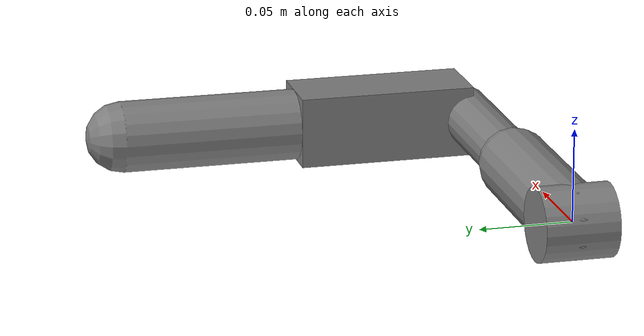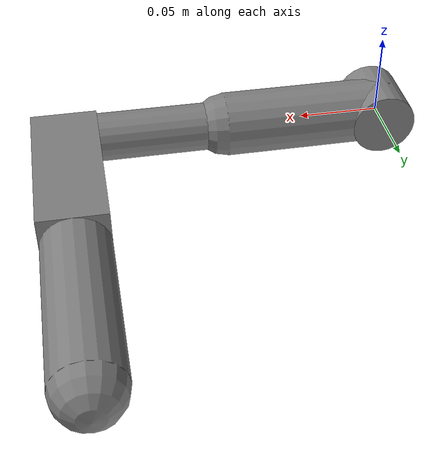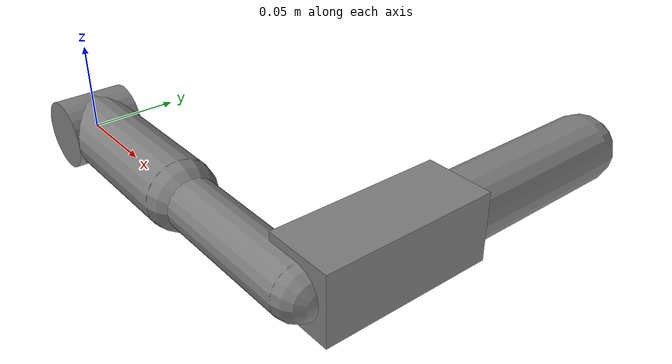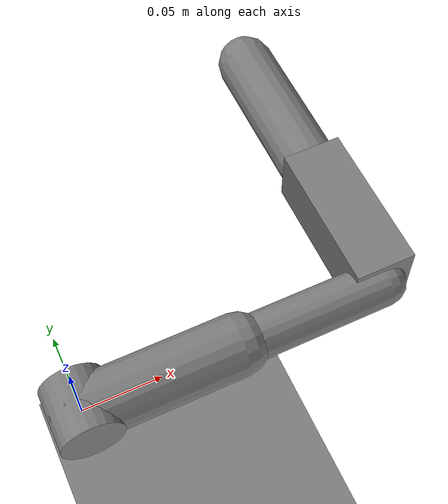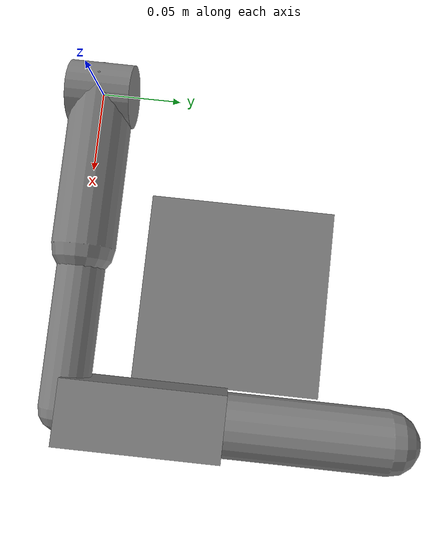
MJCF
<mujoco model="energy conserving pendulum">
    <option integrator="RK4">
        <flag constraint="disable" energy="enable"/>
    </option>
    <worldbody>
        <light pos="0 0 2"/>
        <geom pos="0 0 -.5" type="plane" size="1 1 .01"/>
        <body pos="0 0 0">
            <joint type="hinge" axis="0 1 0"/>
            <geom type="cylinder" size="0.02" fromto="0 -.02 0 0 .02 0"/>
            <geom type="capsule" size="0.02" fromto="0 0 0 .1 0 0"/>
            <body pos="0.1 0 0">
                <joint type="slide" axis="1 0 0" stiffness="200"/>
                <geom type="capsule" size="0.015" fromto="-.1 0 0 .1 0 0"/>
                <body pos=".1 0 0">
                    <joint type="ball"/>
                    <geom type="box" size=".02" fromto="0 0 0 0 .1 0"/>
                    <body pos="0 .1 0">
                        <joint axis="1 0 0"/>
                        <geom type="capsule" size="0.02" fromto="0 0 0 0 .1 0"/>
                    </body>
                </body>
            </body>
        </body>
    </worldbody>
</mujoco>
